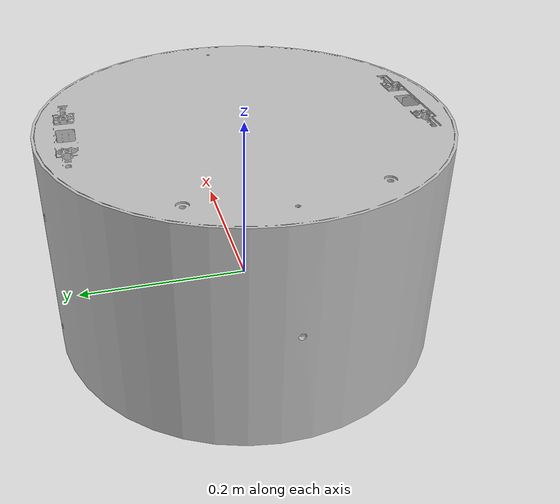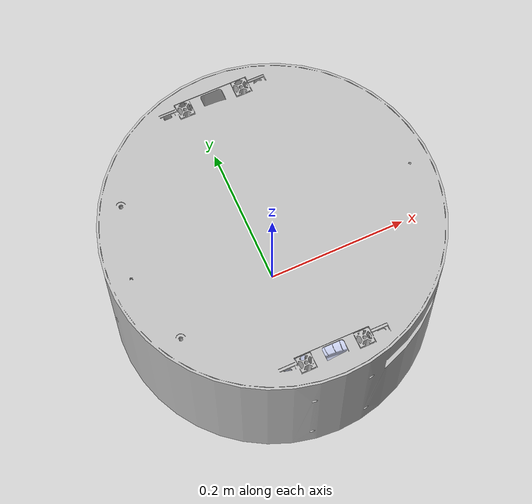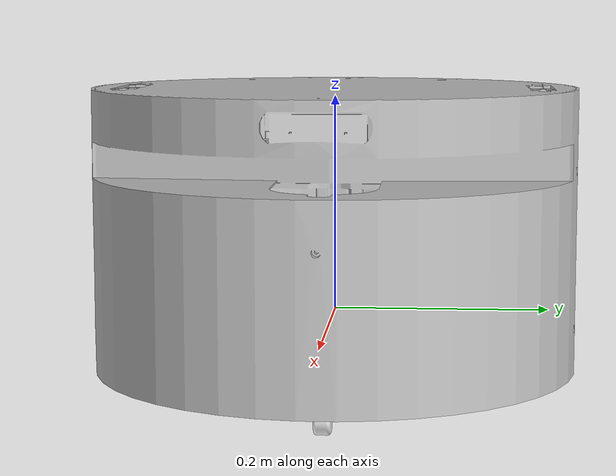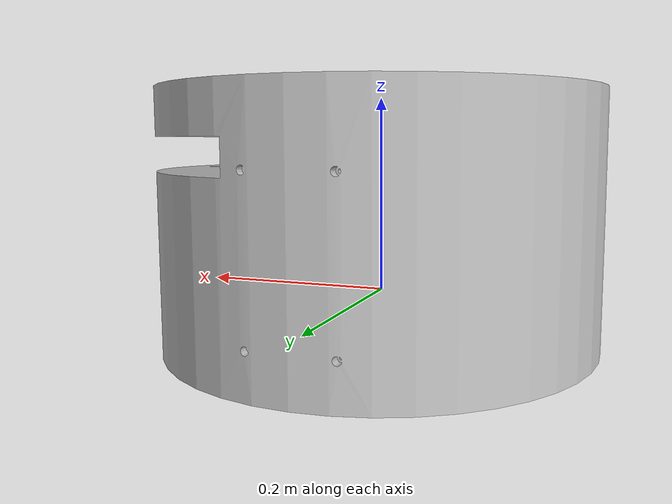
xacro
<?xml version="1.0"?>
<robot xmlns:xacro="http://www.ros.org/wiki/xacro" name="Robot_urdf">

  <link name="base_link">
  </link>

  <joint name="base_footprint_joint" type="fixed">
    <parent link="base_link" />
    <child link="base_footprint" />
    <origin xyz="0 0 -0.07928" rpy="0 0 0" />
  </joint>

  <link name="base_footprint">
  </link>

  <joint
    name="chassis_joint"
    type="fixed">
    <origin
      xyz="0 0 0"
      rpy="0 0 0" />
    <parent
      link="base_link" />
    <child
      link="chassis_link" />
    <axis
      xyz="0 0 0" />
  </joint>

  <link
    name="chassis_link">
    <visual>
      <origin
        xyz="0 0 0"
        rpy="0 0 0" />
      <geometry>
        <mesh
          filename="package://robot_description/meshes/base_link.STL" />
      </geometry>
      <material
        name="">
        <color
          rgba="0.752941176470588 0.752941176470588 0.752941176470588 1" />
      </material>
    </visual>
    <collision>
      <origin
        xyz="0 0 0"
        rpy="0 0 0" />
      <geometry>
        <mesh
          filename="package://robot_description/meshes/base_link.STL" />
      </geometry>
    </collision>
    <inertial>
      <origin
        xyz="0 0 0"
        rpy="0 0 0" />
      <mass
        value="11.80" />
      <inertia
        ixx="0.1666"
        ixy="0"
        ixz="0"
        iyy="0.1530"
        iyz="0"
        izz="0.3019" />
    </inertial>
  </link>

  <joint
    name="left_wheel_joint"
    type="continuous">
    <origin
      xyz="0 0.133 0"
      rpy="${pi/2} 0 0" />
    <parent
      link="base_link" />
    <child
      link="left_wheel" />
    <axis
      xyz="0 0 -1" />
  </joint>

  <link
    name="left_wheel">
    <visual>
      <origin
        xyz="0 0 0"
        rpy="0 0 0" />
      <geometry>
        <mesh
          filename="package://robot_description/meshes/wheel_left_link.STL" />
      </geometry>
      <material
        name="">
        <color
          rgba="0.792156862745098 0.819607843137255 0.933333333333333 1" />
      </material>
    </visual>
    <collision>
      <origin
        xyz="0 0 0"
        rpy="0 0 0" />
      <geometry>
        <mesh
          filename="package://robot_description/meshes/wheel_left_link.STL" />
      </geometry>
    </collision>
    <inertial>
      <origin
        xyz="0 0 0"
        rpy="0 0 0" />
      <mass
        value="0.9580" />
      <inertia
        ixx="0.001585"
        ixy="0"
        ixz="0"
        iyy="0.001585"
        iyz="0"
        izz="0.0027" />
    </inertial>
  </link>

  <joint
    name="right_wheel_joint"
    type="continuous">
    <origin
      xyz="0 -0.133 0"
      rpy="${pi/2} 0 0" />
    <parent
      link="base_link" />
    <child
      link="right_wheel" />
    <axis
      xyz="0 0 -1" />
  </joint>

  <link
    name="right_wheel">
    <visual>
      <origin
        xyz="0 0 0"
        rpy="0 0 0" />
      <geometry>
        <mesh
          filename="package://robot_description/meshes/wheel_right_link.STL" />
      </geometry>
      <material
        name="">
        <color
          rgba="0.792156862745098 0.819607843137255 0.933333333333333 1" />
      </material>
    </visual>
    <collision>
      <origin
        xyz="0 0 0"
        rpy="0 0 0" />
      <geometry>
        <mesh
          filename="package://robot_description/meshes/wheel_right_link.STL" />
      </geometry>
    </collision>
    <inertial>
      <origin
        xyz="0 0 0"
        rpy="0 0 0" />
        <mass
        value="0.9580" />
      <inertia
        ixx="0.001585"
        ixy="0"
        ixz="0"
        iyy="0.001585"
        iyz="0"
        izz="0.0027" />
    </inertial>
  </link>

  <link
    name="caster_front_link">
    <inertial>
      <origin
        xyz="-0.00472870564137723 -0.000242223123215923 0.0282940881515238"
        rpy="0 0 0" />
      <mass
        value="0.0310665024207565" />
      <inertia
        ixx="3.53673645010852E-06"
        ixy="0"
        ixz="0"
        iyy="5.15981170647996E-06"
        iyz="0"
        izz="4.97093525481061E-06" />
    </inertial>
    <visual>
      <origin
        xyz="0 0 0"
        rpy="0 0 0" />
      <geometry>
        <mesh
          filename="package://robot_description/meshes/caster_front_link.STL" />
      </geometry>
      <material
        name="">
        <color
          rgba="1 1 1 1" />
      </material>
    </visual>
    <collision>
      <origin
        xyz="0 0 0"
        rpy="0 0 0" />
      <geometry>
        <mesh
          filename="package://robot_description/meshes/caster_front_link.STL" />
      </geometry>
    </collision>
  </link>
  <joint
    name="caster_front_joint"
    type="fixed">
    <origin
      xyz="0.170163733946607 0.0010384465314523 -0.079269999999999"
      rpy="0 0 -0.00139253703007873" />
    <parent
      link="base_link" />
    <child
      link="caster_front_link" />
    <axis
      xyz="0 0 0" />
  </joint>
  <link
    name="caster_rear_link">
    <inertial>
      <origin
        xyz="0.00472870564137717 0.000242223123215757 0.0282940881515238"
        rpy="0 0 0" />
      <mass
        value="0.0310665024207566" />
      <inertia
        ixx="3.53673645010853E-06"
        ixy="0"
        ixz="0"
        iyy="5.15981170647996E-06"
        iyz="0"
        izz="4.97093525481061E-06" />
    </inertial>
    <visual>
      <origin
        xyz="0 0 0"
        rpy="0 0 0" />
      <geometry>
        <mesh
          filename="package://robot_description/meshes/caster_rear_link.STL" />
      </geometry>
      <material
        name="">
        <color
          rgba="0.898039215686275 0.917647058823529 0.929411764705882 1" />
      </material>
    </visual>
    <collision>
      <origin
        xyz="0 0 0"
        rpy="0 0 0" />
      <geometry>
        <mesh
          filename="package://robot_description/meshes/caster_rear_link.STL" />
      </geometry>
    </collision>
  </link>
  <joint
    name="caster_rear_joint"
    type="fixed">
    <origin
      xyz="-0.170163733946223 -0.00103844653145024 -0.079269999999999"
      rpy="0 0 -0.00139253703007873" />
    <parent
      link="base_link" />
    <child
      link="caster_rear_link" />
    <axis
      xyz="0 0 0" />
  </joint>

</robot>
